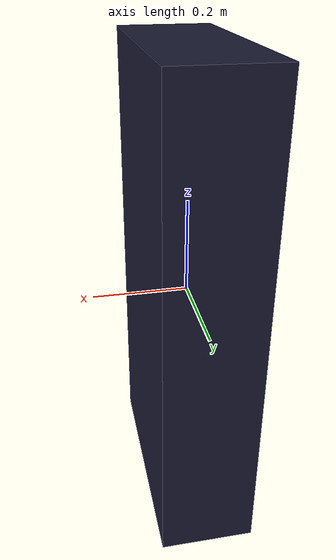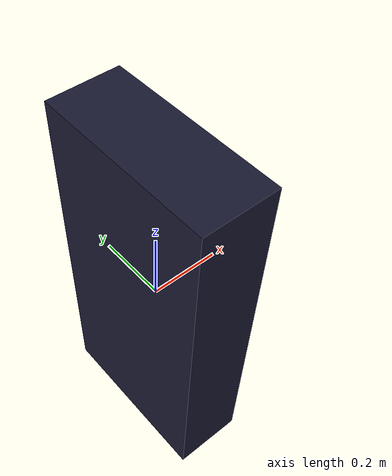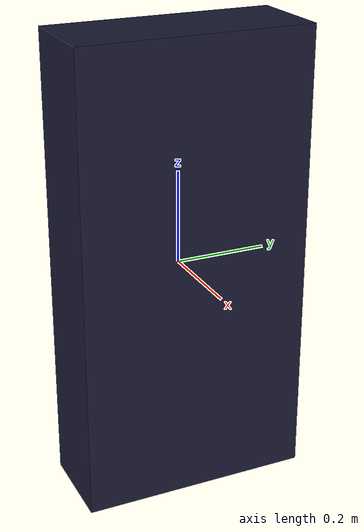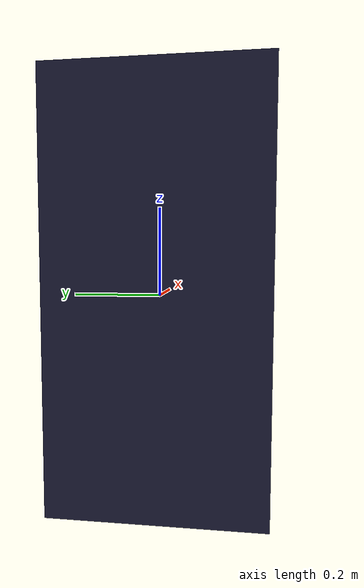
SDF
<?xml version="1.0"?>
<sdf version="1.4">
  <model name="cube-2">
    <pose frame=''>0 0 0 0 -0 0</pose>
    <static>0</static>
    <gravity>1</gravity>
    <self_collide>0</self_collide>
    <kinematic>0</kinematic>

    <link name="cube_link">
      <collision name="body_collision">
        <geometry>
          <box>
            <size>0.2 0.5 1</size>
          </box>
        </geometry>
        <pose frame=''>0 0 0 0 -0 0</pose>
      </collision>

      <visual name="body_visual">
        <pose frame=''>0 0 0 0 -0 0</pose>
        <geometry>
          <box>
            <size>0.2 0.5 1</size>
          </box>
        </geometry>

        <material>
          <ambient>0.1 0.1 0.1 1</ambient>
          <diffuse>0.1 0.1 0.2 1</diffuse>
          <specular>0 0 0 0</specular>
          <emissive>0 0 0 1</emissive>
        </material>
      </visual>

      <inertial>
        <mass>0.3</mass>
        <inertia>
          <ixx>0.026</ixx>
          <ixy>0</ixy>
          <ixz>0</ixz>
          <iyy>0.03125</iyy>
          <iyz>0</iyz>
          <izz>0.00725</izz>
        </inertia>
      </inertial>
    </link>
  </model>
</sdf>
